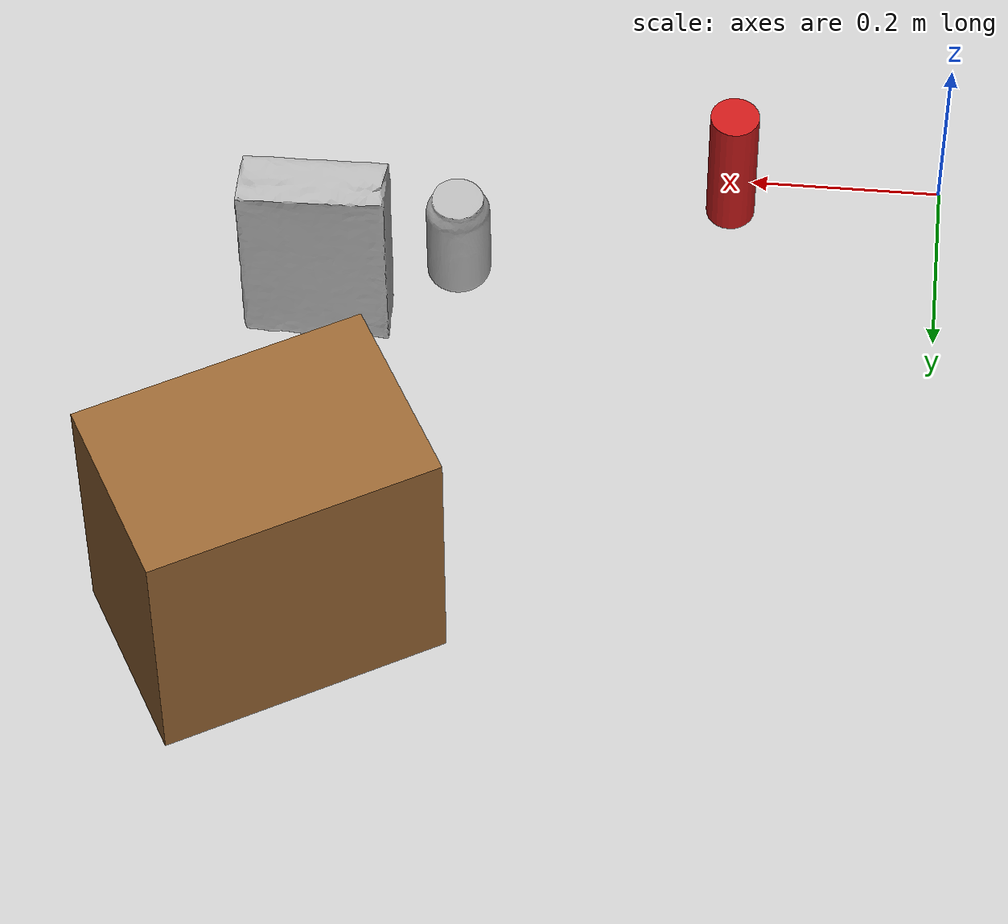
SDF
<?xml version="1.0" ?>

<sdf version="1.7">
  <world name="default">

    <!-- Plugin for simulating physics -->
    <plugin
      filename="gz-sim-physics-system"
      name="gz::sim::systems::Physics">
      <engine>
        <filename>libgz-physics-bullet-featherstone-plugin.so</filename>
      </engine>
    </plugin>

    <!-- Plugin for handling user commands -->
    <plugin
      filename="gz-sim-user-commands-system"
      name="gz::sim::systems::UserCommands">
    </plugin>

    <!-- Plugin for broadcasting scene updates -->
    <plugin
      filename="gz-sim-scene-broadcaster-system"
      name="gz::sim::systems::SceneBroadcaster">
    </plugin>

    <!-- Plugin for sensor handling -->
    <plugin
      filename="gz-sim-sensors-system"
      name="gz::sim::systems::Sensors">
      <render_engine>ogre2</render_engine>
    </plugin>

    <!-- Plugin for IMU -->
    <plugin filename="gz-sim-imu-system"
      name="gz::sim::systems::Imu">
    </plugin>

    <!-- To add realistic gravity, do: 0.0 0.0 -9.8, otherwise do 0.0 0.0 0.0 -->
    <gravity>0.0 0.0 -9.8</gravity>

    <!-- Include a model of the Sun from an external URI -->
    <include>
      <uri>
        https://fuel.gazebosim.org/1.0/OpenRobotics/models/Sun
      </uri>
    </include>

    <!-- Local Ground Plane with modified friction -->
    <model name="ground_plane">
      <static>true</static>
      <link name="link">
        <collision name="collision">
          <geometry>
            <plane>
              <normal>0 0 1</normal>
            </plane>
          </geometry>
          <surface>
            <friction>
              <torsional>
                <coefficient>0.0</coefficient>
              </torsional>
            </friction>
          </surface>
        </collision>
        <visual name="visual">
          <geometry>
            <plane>
              <normal>0 0 1</normal>
              <size>100 100</size>
            </plane>
          </geometry>
          <material>
            <ambient>0.8 0.8 0.8 1</ambient>
            <diffuse>0.8 0.8 0.8 1</diffuse>
            <specular>0.8 0.8 0.8 1</specular>
          </material>
        </visual>
      </link>
    </model>

    <!-- Include the cylinder model -->
    <include>
      <uri>file:///home/jr/ros2_ws/src/moveo/moveo_gazebo/models/red_cylinder</uri>
      <name>red_cylinder</name>
      <pose>0.22 0.12 0.175 0 0 0</pose>
    </include>

    <!-- Include the other objects -->

    <include>
      <uri>file:///home/jr/ros2_ws/src/moveo/moveo_gazebo/models/mustard</uri>
      <pose>0.7 0.15 0.08 0 0 0</pose>
    </include>

    <include>
      <uri>file:///home/jr/ros2_ws/src/moveo/moveo_gazebo/models/cheezit_big_original</uri>
      <pose>0.64 0.23 0.13 1.571 0 0</pose>
    </include>

    <include>
      <uri>file:///home/jr/ros2_ws/src/moveo/moveo_gazebo/models/cardboard_box</uri>
      <pose>0.65 0.60 0.15 0 0 0.5</pose>
    </include>

    <include>
      <uri>file:///home/jr/ros2_ws/src/moveo/moveo_gazebo/models/coke_can</uri>
      <pose>0.5 0.15 0.0 0 0 2.3</pose>
    </include>

    <!-- Define scene properties -->
    <scene>
      <shadows>false</shadows>
    </scene>

  </world>
</sdf>

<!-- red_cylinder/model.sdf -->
<sdf version="1.7">
  <model name="red_cylinder">
    <static>false</static>
    <link name="link">
      <pose>0 0 0 0 0 0</pose>
      <inertial>
        <mass>0.1</mass>
        <inertia>
          <ixx>0.000166667</ixx>
          <iyy>0.000166667</iyy>
          <izz>0.0003125</izz>
        </inertia>
      </inertial>

      <collision name="collision">
        <geometry>
          <cylinder>
            <radius>0.025</radius>
            <length>0.15</length>
          </cylinder>
        </geometry>
        <surface>
          <friction>
            <ode>
              <mu>1.0</mu>
              <mu2>1.0</mu2>
            </ode>
          </friction>
        </surface>
      </collision>

      <visual name="visual">
        <geometry>
          <cylinder>
            <radius>0.025</radius>
            <length>0.15</length>
          </cylinder>
        </geometry>
        <material>
          <ambient>0.8 0.1 0.1 1</ambient>
          <diffuse>0.8 0.1 0.1 1</diffuse>
          <specular>0.8 0.1 0.1 1</specular>
        </material>
      </visual>
    </link>
  </model>
</sdf>

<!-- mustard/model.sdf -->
<sdf version='1.6'>
  <model name='mustard'>
    <static>true</static>
    <link name="link">
      <visual name="visual">
            <geometry>
                <mesh>
                    <scale>0.05 0.05 0.05</scale>
                    <uri>meshes/mustard.dae</uri>
                </mesh>
            </geometry>
        </visual>
        <collision name="collision">
            <geometry>
                <mesh>
                    <scale>0.05 0.05 0.05</scale>
                    <uri>meshes/mustard.dae</uri>
                </mesh>
            </geometry>
        </collision>
    </link>
  </model>
</sdf>

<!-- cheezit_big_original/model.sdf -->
<sdf version="1.6">
  <model name="cheezit_big_original">
    <link name="cheezit_big_original_link">
      <inertial>
        <pose>0.0 0.0 0.0 0 0 0</pose>
        <mass>0.5</mass>
        <inertia>
          <ixx>0.0012</ixx>
          <ixy>0.0</ixy>
          <ixz>0.0</ixz>
          <iyy>0.0018</iyy>
          <iyz>0.0</iyz>
          <izz>0.0024</izz>
        </inertia>
      </inertial>

      <visual name="cheezit_big_original_visual">
        <pose>0 0 0 0 0 0 </pose>
        <geometry>
          <mesh>
            <uri>meshes/cheezit_big_original.dae</uri>
          </mesh>
        </geometry>
      </visual>

      <collision name="cheezit_big_original_collision">
        <pose>0 0 0 0 0 0</pose>
        <geometry>
          <mesh>
            <uri>meshes/cheezit_big_original.dae</uri>
          </mesh>
        </geometry>
        <surface>
          <friction>
            <ode>
              <mu>1.0</mu>
              <mu2>1.0</mu2>
            </ode>
          </friction>
        </surface>
      </collision>

    </link>
    <static>false</static>
  </model>
</sdf>

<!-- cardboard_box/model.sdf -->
<sdf version="1.7">
  <model name="cardboard_box">
    <static>false</static>
    <link name="link">
      <pose>0 0 0 0 0 0</pose>
      <inertial>
        <mass>0.3</mass>
        <inertia>
          <ixx>0.003</ixx>
          <iyy>0.003</iyy>
          <izz>0.003</izz>
        </inertia>
      </inertial>

      <collision name="collision">
        <geometry>
          <box>
            <size>0.3 0.2 0.3</size>
          </box>
        </geometry>
        <surface>
          <friction>
            <ode>
              <mu>0.8</mu>
              <mu2>0.8</mu2>
            </ode>
          </friction>
        </surface>
      </collision>

      <visual name="visual">
        <geometry>
          <box>
            <size>0.3 0.2 0.3</size>
          </box>
        </geometry>
        <material>
          <ambient>0.6 0.4 0.2 1</ambient>
          <diffuse>0.6 0.4 0.2 1</diffuse>
          <specular>0.6 0.4 0.2 1</specular>
        </material>
      </visual>
    </link>
  </model>
</sdf>

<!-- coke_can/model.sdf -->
<sdf version="1.6">
  <model name="coke_can">
    <link name="link">
      <inertial>
        <pose>0 0 0.06 0 0 0</pose>
        <mass>0.390</mass>
        <inertia>
          <ixx>0.00055575</ixx>
          <ixy>0</ixy>
          <ixz>0</ixz>
          <iyy>0.00055575</iyy>
          <iyz>0</iyz>
          <izz>0.0001755</izz>
        </inertia>
      </inertial>
      <collision name="collision">
        <pose>0.003937 0.0047244 -0.18 0 0 0</pose>
        <geometry>
          <mesh>
            <uri>meshes/coke_can.dae</uri>
          </mesh>
        </geometry>
        <surface>
          <friction>
            <ode>
              <mu>1.0</mu>
              <mu2>1.0</mu2>
            </ode>
          </friction>
          <contact>
            <ode>
              <kp>10000000.0</kp>
              <kd>1.0</kd>
              <min_depth>0.001</min_depth>
              <max_vel>0.1</max_vel>
            </ode>
          </contact>
        </surface>
      </collision>
      <visual name="visual">
        <pose>0.003937 0.0047244 -0.18 0 0 0</pose>
        <geometry>
          <mesh>
            <uri>meshes/coke_can.dae</uri>
          </mesh>
        </geometry>
      </visual>
    </link>
  </model>
</sdf>
